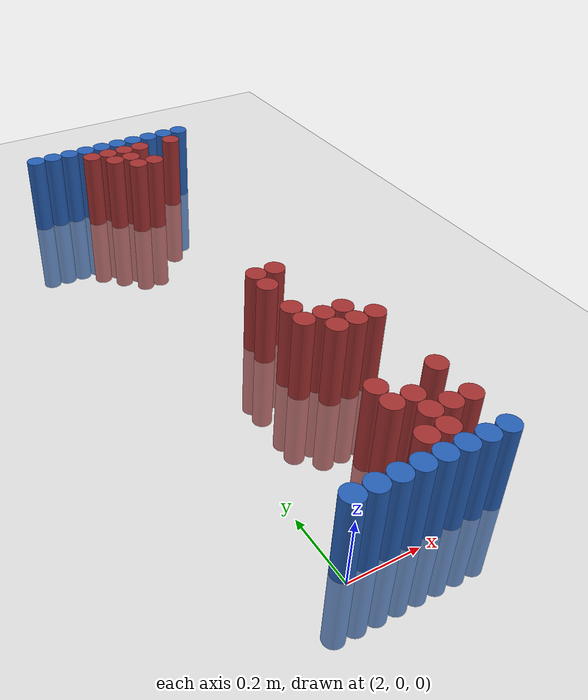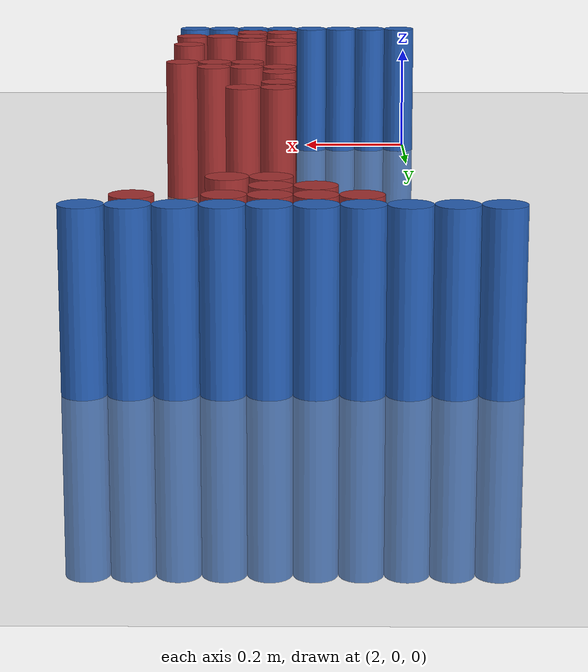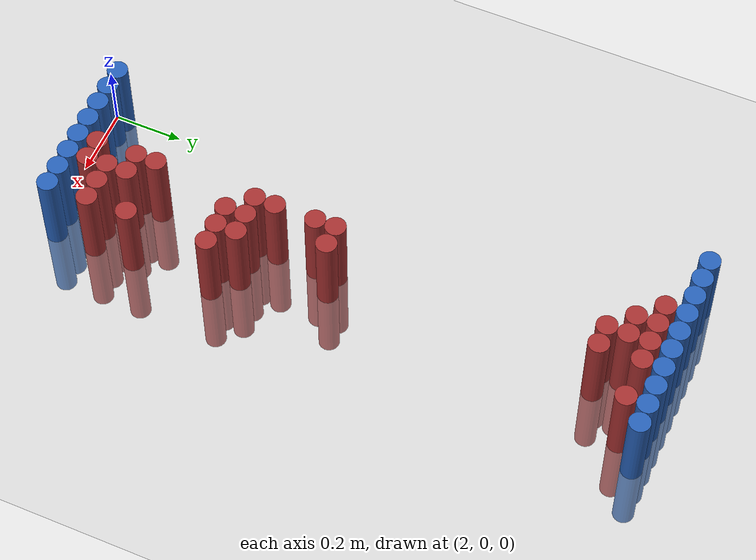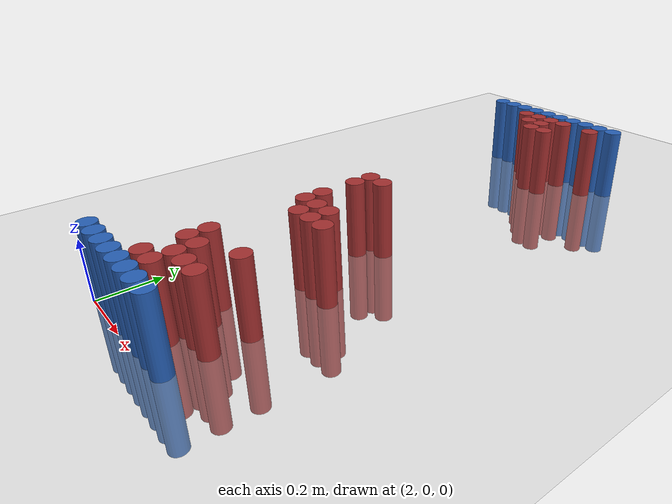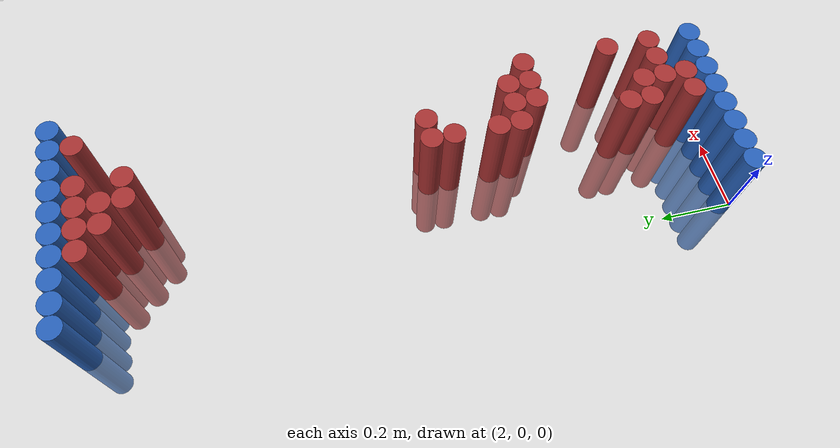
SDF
<sdf version="1.6">
 <world name="default">
  <model name="ground_plane">
   <static>1</static>
   <link name="link">
    <collision name="collision">
     <geometry><plane><normal>0 0 1</normal><size>100 100</size></plane></geometry>
     <surface><friction><ode><mu>100</mu><mu2>50</mu2></ode></friction></surface>
    </collision>
    <visual name="visual">
     <cast_shadows>0</cast_shadows>
     <geometry><plane><normal>0 0 1</normal><size>100 100</size></plane></geometry>
     <material>
      <script><uri>file://media/materials/scripts/gazebo.material</uri><name>Gazebo/Grey</name></script>
     </material>
    </visual>
   </link>
  </model>
  <model name="unit_cylinder_92">
   <static>1</static>
   <pose>1.950000 1.770000 0.000000 0.000000 0.000000 0.000000</pose>
   <link name="link">
    <inertial>
     <mass>1</mass>
     <inertia><ixx>0.145833</ixx><ixy>0</ixy><ixz>0</ixz><iyy>0.145833</iyy><iyz>0</iyz><izz>0.125</izz></inertia>
    </inertial>
    <collision name="collision">
     <geometry><cylinder><radius>0.030000</radius><length>0.5</length></cylinder></geometry>
    </collision>
    <visual name="visual">
     <geometry><cylinder><radius>0.030000</radius><length>0.5</length></cylinder></geometry>
     <material>
      <ambient>0.152000 0.379000 0.720000 1</ambient>
      <diffuse>0.152000 0.379000 0.720000 1</diffuse>
     </material>
     <material>
      <script><name>Gazebo/Grey</name><uri>file://media/materials/scripts/gazebo.material</uri></script>
     </material>
    </visual>
   </link>
  </model>
  <model name="unit_cylinder_93">
   <static>1</static>
   <pose>2.010000 0.030000 0.000000 0.000000 0.000000 0.000000</pose>
   <link name="link">
    <inertial>
     <mass>1</mass>
     <inertia><ixx>0.145833</ixx><ixy>0</ixy><ixz>0</ixz><iyy>0.145833</iyy><iyz>0</iyz><izz>0.125</izz></inertia>
    </inertial>
    <collision name="collision">
     <geometry><cylinder><radius>0.030000</radius><length>0.5</length></cylinder></geometry>
    </collision>
    <visual name="visual">
     <geometry><cylinder><radius>0.030000</radius><length>0.5</length></cylinder></geometry>
     <material>
      <ambient>0.152000 0.379000 0.720000 1</ambient>
      <diffuse>0.152000 0.379000 0.720000 1</diffuse>
     </material>
     <material>
      <script><name>Gazebo/Grey</name><uri>file://media/materials/scripts/gazebo.material</uri></script>
     </material>
    </visual>
   </link>
  </model>
  <model name="unit_cylinder_94">
   <static>1</static>
   <pose>2.010000 1.770000 0.000000 0.000000 0.000000 0.000000</pose>
   <link name="link">
    <inertial>
     <mass>1</mass>
     <inertia><ixx>0.145833</ixx><ixy>0</ixy><ixz>0</ixz><iyy>0.145833</iyy><iyz>0</iyz><izz>0.125</izz></inertia>
    </inertial>
    <collision name="collision">
     <geometry><cylinder><radius>0.030000</radius><length>0.5</length></cylinder></geometry>
    </collision>
    <visual name="visual">
     <geometry><cylinder><radius>0.030000</radius><length>0.5</length></cylinder></geometry>
     <material>
      <ambient>0.152000 0.379000 0.720000 1</ambient>
      <diffuse>0.152000 0.379000 0.720000 1</diffuse>
     </material>
     <material>
      <script><name>Gazebo/Grey</name><uri>file://media/materials/scripts/gazebo.material</uri></script>
     </material>
    </visual>
   </link>
  </model>
  <model name="unit_cylinder_95">
   <static>1</static>
   <pose>2.070000 1.770000 0.000000 0.000000 0.000000 0.000000</pose>
   <link name="link">
    <inertial>
     <mass>1</mass>
     <inertia><ixx>0.145833</ixx><ixy>0</ixy><ixz>0</ixz><iyy>0.145833</iyy><iyz>0</iyz><izz>0.125</izz></inertia>
    </inertial>
    <collision name="collision">
     <geometry><cylinder><radius>0.030000</radius><length>0.5</length></cylinder></geometry>
    </collision>
    <visual name="visual">
     <geometry><cylinder><radius>0.030000</radius><length>0.5</length></cylinder></geometry>
     <material>
      <ambient>0.152000 0.379000 0.720000 1</ambient>
      <diffuse>0.152000 0.379000 0.720000 1</diffuse>
     </material>
     <material>
      <script><name>Gazebo/Grey</name><uri>file://media/materials/scripts/gazebo.material</uri></script>
     </material>
    </visual>
   </link>
  </model>
  <model name="unit_cylinder_96">
   <static>1</static>
   <pose>2.130000 1.770000 0.000000 0.000000 0.000000 0.000000</pose>
   <link name="link">
    <inertial>
     <mass>1</mass>
     <inertia><ixx>0.145833</ixx><ixy>0</ixy><ixz>0</ixz><iyy>0.145833</iyy><iyz>0</iyz><izz>0.125</izz></inertia>
    </inertial>
    <collision name="collision">
     <geometry><cylinder><radius>0.030000</radius><length>0.5</length></cylinder></geometry>
    </collision>
    <visual name="visual">
     <geometry><cylinder><radius>0.030000</radius><length>0.5</length></cylinder></geometry>
     <material>
      <ambient>0.152000 0.379000 0.720000 1</ambient>
      <diffuse>0.152000 0.379000 0.720000 1</diffuse>
     </material>
     <material>
      <script><name>Gazebo/Grey</name><uri>file://media/materials/scripts/gazebo.material</uri></script>
     </material>
    </visual>
   </link>
  </model>
  <model name="unit_cylinder_97">
   <static>1</static>
   <pose>2.190000 1.770000 0.000000 0.000000 0.000000 0.000000</pose>
   <link name="link">
    <inertial>
     <mass>1</mass>
     <inertia><ixx>0.145833</ixx><ixy>0</ixy><ixz>0</ixz><iyy>0.145833</iyy><iyz>0</iyz><izz>0.125</izz></inertia>
    </inertial>
    <collision name="collision">
     <geometry><cylinder><radius>0.030000</radius><length>0.5</length></cylinder></geometry>
    </collision>
    <visual name="visual">
     <geometry><cylinder><radius>0.030000</radius><length>0.5</length></cylinder></geometry>
     <material>
      <ambient>0.152000 0.379000 0.720000 1</ambient>
      <diffuse>0.152000 0.379000 0.720000 1</diffuse>
     </material>
     <material>
      <script><name>Gazebo/Grey</name><uri>file://media/materials/scripts/gazebo.material</uri></script>
     </material>
    </visual>
   </link>
  </model>
  <model name="unit_cylinder_98">
   <static>1</static>
   <pose>2.250000 1.770000 0.000000 0.000000 0.000000 0.000000</pose>
   <link name="link">
    <inertial>
     <mass>1</mass>
     <inertia><ixx>0.145833</ixx><ixy>0</ixy><ixz>0</ixz><iyy>0.145833</iyy><iyz>0</iyz><izz>0.125</izz></inertia>
    </inertial>
    <collision name="collision">
     <geometry><cylinder><radius>0.030000</radius><length>0.5</length></cylinder></geometry>
    </collision>
    <visual name="visual">
     <geometry><cylinder><radius>0.030000</radius><length>0.5</length></cylinder></geometry>
     <material>
      <ambient>0.152000 0.379000 0.720000 1</ambient>
      <diffuse>0.152000 0.379000 0.720000 1</diffuse>
     </material>
     <material>
      <script><name>Gazebo/Grey</name><uri>file://media/materials/scripts/gazebo.material</uri></script>
     </material>
    </visual>
   </link>
  </model>
  <model name="unit_cylinder_99">
   <static>1</static>
   <pose>2.310000 1.770000 0.000000 0.000000 0.000000 0.000000</pose>
   <link name="link">
    <inertial>
     <mass>1</mass>
     <inertia><ixx>0.145833</ixx><ixy>0</ixy><ixz>0</ixz><iyy>0.145833</iyy><iyz>0</iyz><izz>0.125</izz></inertia>
    </inertial>
    <collision name="collision">
     <geometry><cylinder><radius>0.030000</radius><length>0.5</length></cylinder></geometry>
    </collision>
    <visual name="visual">
     <geometry><cylinder><radius>0.030000</radius><length>0.5</length></cylinder></geometry>
     <material>
      <ambient>0.152000 0.379000 0.720000 1</ambient>
      <diffuse>0.152000 0.379000 0.720000 1</diffuse>
     </material>
     <material>
      <script><name>Gazebo/Grey</name><uri>file://media/materials/scripts/gazebo.material</uri></script>
     </material>
    </visual>
   </link>
  </model>
  <model name="unit_cylinder_100">
   <static>1</static>
   <pose>2.370000 1.770000 0.000000 0.000000 0.000000 0.000000</pose>
   <link name="link">
    <inertial>
     <mass>1</mass>
     <inertia><ixx>0.145833</ixx><ixy>0</ixy><ixz>0</ixz><iyy>0.145833</iyy><iyz>0</iyz><izz>0.125</izz></inertia>
    </inertial>
    <collision name="collision">
     <geometry><cylinder><radius>0.030000</radius><length>0.5</length></cylinder></geometry>
    </collision>
    <visual name="visual">
     <geometry><cylinder><radius>0.030000</radius><length>0.5</length></cylinder></geometry>
     <material>
      <ambient>0.152000 0.379000 0.720000 1</ambient>
      <diffuse>0.152000 0.379000 0.720000 1</diffuse>
     </material>
     <material>
      <script><name>Gazebo/Grey</name><uri>file://media/materials/scripts/gazebo.material</uri></script>
     </material>
    </visual>
   </link>
  </model>
  <model name="unit_cylinder_101">
   <static>1</static>
   <pose>2.430000 1.770000 0.000000 0.000000 0.000000 0.000000</pose>
   <link name="link">
    <inertial>
     <mass>1</mass>
     <inertia><ixx>0.145833</ixx><ixy>0</ixy><ixz>0</ixz><iyy>0.145833</iyy><iyz>0</iyz><izz>0.125</izz></inertia>
    </inertial>
    <collision name="collision">
     <geometry><cylinder><radius>0.030000</radius><length>0.5</length></cylinder></geometry>
    </collision>
    <visual name="visual">
     <geometry><cylinder><radius>0.030000</radius><length>0.5</length></cylinder></geometry>
     <material>
      <ambient>0.152000 0.379000 0.720000 1</ambient>
      <diffuse>0.152000 0.379000 0.720000 1</diffuse>
     </material>
     <material>
      <script><name>Gazebo/Grey</name><uri>file://media/materials/scripts/gazebo.material</uri></script>
     </material>
    </visual>
   </link>
  </model>
  <model name="unit_cylinder_102">
   <static>1</static>
   <pose>2.490000 1.770000 0.000000 0.000000 0.000000 0.000000</pose>
   <link name="link">
    <inertial>
     <mass>1</mass>
     <inertia><ixx>0.145833</ixx><ixy>0</ixy><ixz>0</ixz><iyy>0.145833</iyy><iyz>0</iyz><izz>0.125</izz></inertia>
    </inertial>
    <collision name="collision">
     <geometry><cylinder><radius>0.030000</radius><length>0.5</length></cylinder></geometry>
    </collision>
    <visual name="visual">
     <geometry><cylinder><radius>0.030000</radius><length>0.5</length></cylinder></geometry>
     <material>
      <ambient>0.152000 0.379000 0.720000 1</ambient>
      <diffuse>0.152000 0.379000 0.720000 1</diffuse>
     </material>
     <material>
      <script><name>Gazebo/Grey</name><uri>file://media/materials/scripts/gazebo.material</uri></script>
     </material>
    </visual>
   </link>
  </model>
  <model name="unit_cylinder_125">
   <static>1</static>
   <pose>2.130000 1.710000 0.000000 0.000000 0.000000 0.000000</pose>
   <link name="link">
    <inertial>
     <mass>1</mass>
     <inertia><ixx>0.145833</ixx><ixy>0</ixy><ixz>0</ixz><iyy>0.145833</iyy><iyz>0</iyz><izz>0.125</izz></inertia>
    </inertial>
    <collision name="collision">
     <geometry><cylinder><radius>0.030000</radius><length>0.5</length></cylinder></geometry>
    </collision>
    <visual name="visual">
     <geometry><cylinder><radius>0.030000</radius><length>0.5</length></cylinder></geometry>
     <material>
      <ambient>0.648000 0.192000 0.192000 1</ambient>
      <diffuse>0.648000 0.192000 0.192000 1</diffuse>
     </material>
     <material>
      <script><name>Gazebo/Grey</name><uri>file://media/materials/scripts/gazebo.material</uri></script>
     </material>
    </visual>
   </link>
  </model>
  <model name="unit_cylinder_126">
   <static>1</static>
   <pose>2.190000 1.710000 0.000000 0.000000 0.000000 0.000000</pose>
   <link name="link">
    <inertial>
     <mass>1</mass>
     <inertia><ixx>0.145833</ixx><ixy>0</ixy><ixz>0</ixz><iyy>0.145833</iyy><iyz>0</iyz><izz>0.125</izz></inertia>
    </inertial>
    <collision name="collision">
     <geometry><cylinder><radius>0.030000</radius><length>0.5</length></cylinder></geometry>
    </collision>
    <visual name="visual">
     <geometry><cylinder><radius>0.030000</radius><length>0.5</length></cylinder></geometry>
     <material>
      <ambient>0.648000 0.192000 0.192000 1</ambient>
      <diffuse>0.648000 0.192000 0.192000 1</diffuse>
     </material>
     <material>
      <script><name>Gazebo/Grey</name><uri>file://media/materials/scripts/gazebo.material</uri></script>
     </material>
    </visual>
   </link>
  </model>
  <model name="unit_cylinder_127">
   <static>1</static>
   <pose>2.250000 1.710000 0.000000 0.000000 0.000000 0.000000</pose>
   <link name="link">
    <inertial>
     <mass>1</mass>
     <inertia><ixx>0.145833</ixx><ixy>0</ixy><ixz>0</ixz><iyy>0.145833</iyy><iyz>0</iyz><izz>0.125</izz></inertia>
    </inertial>
    <collision name="collision">
     <geometry><cylinder><radius>0.030000</radius><length>0.5</length></cylinder></geometry>
    </collision>
    <visual name="visual">
     <geometry><cylinder><radius>0.030000</radius><length>0.5</length></cylinder></geometry>
     <material>
      <ambient>0.648000 0.192000 0.192000 1</ambient>
      <diffuse>0.648000 0.192000 0.192000 1</diffuse>
     </material>
     <material>
      <script><name>Gazebo/Grey</name><uri>file://media/materials/scripts/gazebo.material</uri></script>
     </material>
    </visual>
   </link>
  </model>
  <model name="unit_cylinder_128">
   <static>1</static>
   <pose>2.310000 1.710000 0.000000 0.000000 0.000000 0.000000</pose>
   <link name="link">
    <inertial>
     <mass>1</mass>
     <inertia><ixx>0.145833</ixx><ixy>0</ixy><ixz>0</ixz><iyy>0.145833</iyy><iyz>0</iyz><izz>0.125</izz></inertia>
    </inertial>
    <collision name="collision">
     <geometry><cylinder><radius>0.030000</radius><length>0.5</length></cylinder></geometry>
    </collision>
    <visual name="visual">
     <geometry><cylinder><radius>0.030000</radius><length>0.5</length></cylinder></geometry>
     <material>
      <ambient>0.648000 0.192000 0.192000 1</ambient>
      <diffuse>0.648000 0.192000 0.192000 1</diffuse>
     </material>
     <material>
      <script><name>Gazebo/Grey</name><uri>file://media/materials/scripts/gazebo.material</uri></script>
     </material>
    </visual>
   </link>
  </model>
  <model name="unit_cylinder_129">
   <static>1</static>
   <pose>2.430000 1.710000 0.000000 0.000000 0.000000 0.000000</pose>
   <link name="link">
    <inertial>
     <mass>1</mass>
     <inertia><ixx>0.145833</ixx><ixy>0</ixy><ixz>0</ixz><iyy>0.145833</iyy><iyz>0</iyz><izz>0.125</izz></inertia>
    </inertial>
    <collision name="collision">
     <geometry><cylinder><radius>0.030000</radius><length>0.5</length></cylinder></geometry>
    </collision>
    <visual name="visual">
     <geometry><cylinder><radius>0.030000</radius><length>0.5</length></cylinder></geometry>
     <material>
      <ambient>0.648000 0.192000 0.192000 1</ambient>
      <diffuse>0.648000 0.192000 0.192000 1</diffuse>
     </material>
     <material>
      <script><name>Gazebo/Grey</name><uri>file://media/materials/scripts/gazebo.material</uri></script>
     </material>
    </visual>
   </link>
  </model>
  <model name="unit_cylinder_141">
   <static>1</static>
   <pose>2.190000 1.650000 0.000000 0.000000 0.000000 0.000000</pose>
   <link name="link">
    <inertial>
     <mass>1</mass>
     <inertia><ixx>0.145833</ixx><ixy>0</ixy><ixz>0</ixz><iyy>0.145833</iyy><iyz>0</iyz><izz>0.125</izz></inertia>
    </inertial>
    <collision name="collision">
     <geometry><cylinder><radius>0.030000</radius><length>0.5</length></cylinder></geometry>
    </collision>
    <visual name="visual">
     <geometry><cylinder><radius>0.030000</radius><length>0.5</length></cylinder></geometry>
     <material>
      <ambient>0.648000 0.192000 0.192000 1</ambient>
      <diffuse>0.648000 0.192000 0.192000 1</diffuse>
     </material>
     <material>
      <script><name>Gazebo/Grey</name><uri>file://media/materials/scripts/gazebo.material</uri></script>
     </material>
    </visual>
   </link>
  </model>
  <model name="unit_cylinder_142">
   <static>1</static>
   <pose>2.250000 1.650000 0.000000 0.000000 0.000000 0.000000</pose>
   <link name="link">
    <inertial>
     <mass>1</mass>
     <inertia><ixx>0.145833</ixx><ixy>0</ixy><ixz>0</ixz><iyy>0.145833</iyy><iyz>0</iyz><izz>0.125</izz></inertia>
    </inertial>
    <collision name="collision">
     <geometry><cylinder><radius>0.030000</radius><length>0.5</length></cylinder></geometry>
    </collision>
    <visual name="visual">
     <geometry><cylinder><radius>0.030000</radius><length>0.5</length></cylinder></geometry>
     <material>
      <ambient>0.648000 0.192000 0.192000 1</ambient>
      <diffuse>0.648000 0.192000 0.192000 1</diffuse>
     </material>
     <material>
      <script><name>Gazebo/Grey</name><uri>file://media/materials/scripts/gazebo.material</uri></script>
     </material>
    </visual>
   </link>
  </model>
  <model name="unit_cylinder_145">
   <static>1</static>
   <pose>2.250000 1.590000 0.000000 0.000000 0.000000 0.000000</pose>
   <link name="link">
    <inertial>
     <mass>1</mass>
     <inertia><ixx>0.145833</ixx><ixy>0</ixy><ixz>0</ixz><iyy>0.145833</iyy><iyz>0</iyz><izz>0.125</izz></inertia>
    </inertial>
    <collision name="collision">
     <geometry><cylinder><radius>0.030000</radius><length>0.5</length></cylinder></geometry>
    </collision>
    <visual name="visual">
     <geometry><cylinder><radius>0.030000</radius><length>0.5</length></cylinder></geometry>
     <material>
      <ambient>0.648000 0.192000 0.192000 1</ambient>
      <diffuse>0.648000 0.192000 0.192000 1</diffuse>
     </material>
     <material>
      <script><name>Gazebo/Grey</name><uri>file://media/materials/scripts/gazebo.material</uri></script>
     </material>
    </visual>
   </link>
  </model>
  <model name="unit_cylinder_146">
   <static>1</static>
   <pose>2.310000 1.590000 0.000000 0.000000 0.000000 0.000000</pose>
   <link name="link">
    <inertial>
     <mass>1</mass>
     <inertia><ixx>0.145833</ixx><ixy>0</ixy><ixz>0</ixz><iyy>0.145833</iyy><iyz>0</iyz><izz>0.125</izz></inertia>
    </inertial>
    <collision name="collision">
     <geometry><cylinder><radius>0.030000</radius><length>0.5</length></cylinder></geometry>
    </collision>
    <visual name="visual">
     <geometry><cylinder><radius>0.030000</radius><length>0.5</length></cylinder></geometry>
     <material>
      <ambient>0.648000 0.192000 0.192000 1</ambient>
      <diffuse>0.648000 0.192000 0.192000 1</diffuse>
     </material>
     <material>
      <script><name>Gazebo/Grey</name><uri>file://media/materials/scripts/gazebo.material</uri></script>
     </material>
    </visual>
   </link>
  </model>
  <model name="unit_cylinder_171">
   <static>1</static>
   <pose>2.250000 0.810000 0.000000 0.000000 0.000000 0.000000</pose>
   <link name="link">
    <inertial>
     <mass>1</mass>
     <inertia><ixx>0.145833</ixx><ixy>0</ixy><ixz>0</ixz><iyy>0.145833</iyy><iyz>0</iyz><izz>0.125</izz></inertia>
    </inertial>
    <collision name="collision">
     <geometry><cylinder><radius>0.030000</radius><length>0.5</length></cylinder></geometry>
    </collision>
    <visual name="visual">
     <geometry><cylinder><radius>0.030000</radius><length>0.5</length></cylinder></geometry>
     <material>
      <ambient>0.648000 0.192000 0.192000 1</ambient>
      <diffuse>0.648000 0.192000 0.192000 1</diffuse>
     </material>
     <material>
      <script><name>Gazebo/Grey</name><uri>file://media/materials/scripts/gazebo.material</uri></script>
     </material>
    </visual>
   </link>
  </model>
  <model name="unit_cylinder_172">
   <static>1</static>
   <pose>2.310000 0.810000 0.000000 0.000000 0.000000 0.000000</pose>
   <link name="link">
    <inertial>
     <mass>1</mass>
     <inertia><ixx>0.145833</ixx><ixy>0</ixy><ixz>0</ixz><iyy>0.145833</iyy><iyz>0</iyz><izz>0.125</izz></inertia>
    </inertial>
    <collision name="collision">
     <geometry><cylinder><radius>0.030000</radius><length>0.5</length></cylinder></geometry>
    </collision>
    <visual name="visual">
     <geometry><cylinder><radius>0.030000</radius><length>0.5</length></cylinder></geometry>
     <material>
      <ambient>0.648000 0.192000 0.192000 1</ambient>
      <diffuse>0.648000 0.192000 0.192000 1</diffuse>
     </material>
     <material>
      <script><name>Gazebo/Grey</name><uri>file://media/materials/scripts/gazebo.material</uri></script>
     </material>
    </visual>
   </link>
  </model>
  <model name="unit_cylinder_175">
   <static>1</static>
   <pose>2.250000 0.750000 0.000000 0.000000 0.000000 0.000000</pose>
   <link name="link">
    <inertial>
     <mass>1</mass>
     <inertia><ixx>0.145833</ixx><ixy>0</ixy><ixz>0</ixz><iyy>0.145833</iyy><iyz>0</iyz><izz>0.125</izz></inertia>
    </inertial>
    <collision name="collision">
     <geometry><cylinder><radius>0.030000</radius><length>0.5</length></cylinder></geometry>
    </collision>
    <visual name="visual">
     <geometry><cylinder><radius>0.030000</radius><length>0.5</length></cylinder></geometry>
     <material>
      <ambient>0.648000 0.192000 0.192000 1</ambient>
      <diffuse>0.648000 0.192000 0.192000 1</diffuse>
     </material>
     <material>
      <script><name>Gazebo/Grey</name><uri>file://media/materials/scripts/gazebo.material</uri></script>
     </material>
    </visual>
   </link>
  </model>
  <model name="unit_cylinder_182">
   <static>1</static>
   <pose>2.250000 0.630000 0.000000 0.000000 0.000000 0.000000</pose>
   <link name="link">
    <inertial>
     <mass>1</mass>
     <inertia><ixx>0.145833</ixx><ixy>0</ixy><ixz>0</ixz><iyy>0.145833</iyy><iyz>0</iyz><izz>0.125</izz></inertia>
    </inertial>
    <collision name="collision">
     <geometry><cylinder><radius>0.030000</radius><length>0.5</length></cylinder></geometry>
    </collision>
    <visual name="visual">
     <geometry><cylinder><radius>0.030000</radius><length>0.5</length></cylinder></geometry>
     <material>
      <ambient>0.648000 0.192000 0.192000 1</ambient>
      <diffuse>0.648000 0.192000 0.192000 1</diffuse>
     </material>
     <material>
      <script><name>Gazebo/Grey</name><uri>file://media/materials/scripts/gazebo.material</uri></script>
     </material>
    </visual>
   </link>
  </model>
  <model name="unit_cylinder_184">
   <static>1</static>
   <pose>2.250000 0.570000 0.000000 0.000000 0.000000 0.000000</pose>
   <link name="link">
    <inertial>
     <mass>1</mass>
     <inertia><ixx>0.145833</ixx><ixy>0</ixy><ixz>0</ixz><iyy>0.145833</iyy><iyz>0</iyz><izz>0.125</izz></inertia>
    </inertial>
    <collision name="collision">
     <geometry><cylinder><radius>0.030000</radius><length>0.5</length></cylinder></geometry>
    </collision>
    <visual name="visual">
     <geometry><cylinder><radius>0.030000</radius><length>0.5</length></cylinder></geometry>
     <material>
      <ambient>0.648000 0.192000 0.192000 1</ambient>
      <diffuse>0.648000 0.192000 0.192000 1</diffuse>
     </material>
     <material>
      <script><name>Gazebo/Grey</name><uri>file://media/materials/scripts/gazebo.material</uri></script>
     </material>
    </visual>
   </link>
  </model>
  <model name="unit_cylinder_185">
   <static>1</static>
   <pose>2.310000 0.570000 0.000000 0.000000 0.000000 0.000000</pose>
   <link name="link">
    <inertial>
     <mass>1</mass>
     <inertia><ixx>0.145833</ixx><ixy>0</ixy><ixz>0</ixz><iyy>0.145833</iyy><iyz>0</iyz><izz>0.125</izz></inertia>
    </inertial>
    <collision name="collision">
     <geometry><cylinder><radius>0.030000</radius><length>0.5</length></cylinder></geometry>
    </collision>
    <visual name="visual">
     <geometry><cylinder><radius>0.030000</radius><length>0.5</length></cylinder></geometry>
     <material>
      <ambient>0.648000 0.192000 0.192000 1</ambient>
      <diffuse>0.648000 0.192000 0.192000 1</diffuse>
     </material>
     <material>
      <script><name>Gazebo/Grey</name><uri>file://media/materials/scripts/gazebo.material</uri></script>
     </material>
    </visual>
   </link>
  </model>
  <model name="unit_cylinder_186">
   <static>1</static>
   <pose>2.370000 0.570000 0.000000 0.000000 0.000000 0.000000</pose>
   <link name="link">
    <inertial>
     <mass>1</mass>
     <inertia><ixx>0.145833</ixx><ixy>0</ixy><ixz>0</ixz><iyy>0.145833</iyy><iyz>0</iyz><izz>0.125</izz></inertia>
    </inertial>
    <collision name="collision">
     <geometry><cylinder><radius>0.030000</radius><length>0.5</length></cylinder></geometry>
    </collision>
    <visual name="visual">
     <geometry><cylinder><radius>0.030000</radius><length>0.5</length></cylinder></geometry>
     <material>
      <ambient>0.648000 0.192000 0.192000 1</ambient>
      <diffuse>0.648000 0.192000 0.192000 1</diffuse>
     </material>
     <material>
      <script><name>Gazebo/Grey</name><uri>file://media/materials/scripts/gazebo.material</uri></script>
     </material>
    </visual>
   </link>
  </model>
  <model name="unit_cylinder_188">
   <static>1</static>
   <pose>2.310000 0.510000 0.000000 0.000000 0.000000 0.000000</pose>
   <link name="link">
    <inertial>
     <mass>1</mass>
     <inertia><ixx>0.145833</ixx><ixy>0</ixy><ixz>0</ixz><iyy>0.145833</iyy><iyz>0</iyz><izz>0.125</izz></inertia>
    </inertial>
    <collision name="collision">
     <geometry><cylinder><radius>0.030000</radius><length>0.5</length></cylinder></geometry>
    </collision>
    <visual name="visual">
     <geometry><cylinder><radius>0.030000</radius><length>0.5</length></cylinder></geometry>
     <material>
      <ambient>0.648000 0.192000 0.192000 1</ambient>
      <diffuse>0.648000 0.192000 0.192000 1</diffuse>
     </material>
     <material>
      <script><name>Gazebo/Grey</name><uri>file://media/materials/scripts/gazebo.material</uri></script>
     </material>
    </visual>
   </link>
  </model>
  <model name="unit_cylinder_189">
   <static>1</static>
   <pose>2.370000 0.510000 0.000000 0.000000 0.000000 0.000000</pose>
   <link name="link">
    <inertial>
     <mass>1</mass>
     <inertia><ixx>0.145833</ixx><ixy>0</ixy><ixz>0</ixz><iyy>0.145833</iyy><iyz>0</iyz><izz>0.125</izz></inertia>
    </inertial>
    <collision name="collision">
     <geometry><cylinder><radius>0.030000</radius><length>0.5</length></cylinder></geometry>
    </collision>
    <visual name="visual">
     <geometry><cylinder><radius>0.030000</radius><length>0.5</length></cylinder></geometry>
     <material>
      <ambient>0.648000 0.192000 0.192000 1</ambient>
      <diffuse>0.648000 0.192000 0.192000 1</diffuse>
     </material>
     <material>
      <script><name>Gazebo/Grey</name><uri>file://media/materials/scripts/gazebo.material</uri></script>
     </material>
    </visual>
   </link>
  </model>
  <model name="unit_cylinder_190">
   <static>1</static>
   <pose>2.430000 0.510000 0.000000 0.000000 0.000000 0.000000</pose>
   <link name="link">
    <inertial>
     <mass>1</mass>
     <inertia><ixx>0.145833</ixx><ixy>0</ixy><ixz>0</ixz><iyy>0.145833</iyy><iyz>0</iyz><izz>0.125</izz></inertia>
    </inertial>
    <collision name="collision">
     <geometry><cylinder><radius>0.030000</radius><length>0.5</length></cylinder></geometry>
    </collision>
    <visual name="visual">
     <geometry><cylinder><radius>0.030000</radius><length>0.5</length></cylinder></geometry>
     <material>
      <ambient>0.648000 0.192000 0.192000 1</ambient>
      <diffuse>0.648000 0.192000 0.192000 1</diffuse>
     </material>
     <material>
      <script><name>Gazebo/Grey</name><uri>file://media/materials/scripts/gazebo.material</uri></script>
     </material>
    </visual>
   </link>
  </model>
  <model name="unit_cylinder_200">
   <static>1</static>
   <pose>2.250000 0.270000 0.000000 0.000000 0.000000 0.000000</pose>
   <link name="link">
    <inertial>
     <mass>1</mass>
     <inertia><ixx>0.145833</ixx><ixy>0</ixy><ixz>0</ixz><iyy>0.145833</iyy><iyz>0</iyz><izz>0.125</izz></inertia>
    </inertial>
    <collision name="collision">
     <geometry><cylinder><radius>0.030000</radius><length>0.5</length></cylinder></geometry>
    </collision>
    <visual name="visual">
     <geometry><cylinder><radius>0.030000</radius><length>0.5</length></cylinder></geometry>
     <material>
      <ambient>0.648000 0.192000 0.192000 1</ambient>
      <diffuse>0.648000 0.192000 0.192000 1</diffuse>
     </material>
     <material>
      <script><name>Gazebo/Grey</name><uri>file://media/materials/scripts/gazebo.material</uri></script>
     </material>
    </visual>
   </link>
  </model>
  <model name="unit_cylinder_201">
   <static>1</static>
   <pose>2.430000 0.270000 0.000000 0.000000 0.000000 0.000000</pose>
   <link name="link">
    <inertial>
     <mass>1</mass>
     <inertia><ixx>0.145833</ixx><ixy>0</ixy><ixz>0</ixz><iyy>0.145833</iyy><iyz>0</iyz><izz>0.125</izz></inertia>
    </inertial>
    <collision name="collision">
     <geometry><cylinder><radius>0.030000</radius><length>0.5</length></cylinder></geometry>
    </collision>
    <visual name="visual">
     <geometry><cylinder><radius>0.030000</radius><length>0.5</length></cylinder></geometry>
     <material>
      <ambient>0.648000 0.192000 0.192000 1</ambient>
      <diffuse>0.648000 0.192000 0.192000 1</diffuse>
     </material>
     <material>
      <script><name>Gazebo/Grey</name><uri>file://media/materials/scripts/gazebo.material</uri></script>
     </material>
    </visual>
   </link>
  </model>
  <model name="unit_cylinder_206">
   <static>1</static>
   <pose>2.250000 0.210000 0.000000 0.000000 0.000000 0.000000</pose>
   <link name="link">
    <inertial>
     <mass>1</mass>
     <inertia><ixx>0.145833</ixx><ixy>0</ixy><ixz>0</ixz><iyy>0.145833</iyy><iyz>0</iyz><izz>0.125</izz></inertia>
    </inertial>
    <collision name="collision">
     <geometry><cylinder><radius>0.030000</radius><length>0.5</length></cylinder></geometry>
    </collision>
    <visual name="visual">
     <geometry><cylinder><radius>0.030000</radius><length>0.5</length></cylinder></geometry>
     <material>
      <ambient>0.648000 0.192000 0.192000 1</ambient>
      <diffuse>0.648000 0.192000 0.192000 1</diffuse>
     </material>
     <material>
      <script><name>Gazebo/Grey</name><uri>file://media/materials/scripts/gazebo.material</uri></script>
     </material>
    </visual>
   </link>
  </model>
  <model name="unit_cylinder_207">
   <static>1</static>
   <pose>2.310000 0.210000 0.000000 0.000000 0.000000 0.000000</pose>
   <link name="link">
    <inertial>
     <mass>1</mass>
     <inertia><ixx>0.145833</ixx><ixy>0</ixy><ixz>0</ixz><iyy>0.145833</iyy><iyz>0</iyz><izz>0.125</izz></inertia>
    </inertial>
    <collision name="collision">
     <geometry><cylinder><radius>0.030000</radius><length>0.5</length></cylinder></geometry>
    </collision>
    <visual name="visual">
     <geometry><cylinder><radius>0.030000</radius><length>0.5</length></cylinder></geometry>
     <material>
      <ambient>0.648000 0.192000 0.192000 1</ambient>
      <diffuse>0.648000 0.192000 0.192000 1</diffuse>
     </material>
     <material>
      <script><name>Gazebo/Grey</name><uri>file://media/materials/scripts/gazebo.material</uri></script>
     </material>
    </visual>
   </link>
  </model>
  <model name="unit_cylinder_216">
   <static>1</static>
   <pose>2.310000 0.150000 0.000000 0.000000 0.000000 0.000000</pose>
   <link name="link">
    <inertial>
     <mass>1</mass>
     <inertia><ixx>0.145833</ixx><ixy>0</ixy><ixz>0</ixz><iyy>0.145833</iyy><iyz>0</iyz><izz>0.125</izz></inertia>
    </inertial>
    <collision name="collision">
     <geometry><cylinder><radius>0.030000</radius><length>0.5</length></cylinder></geometry>
    </collision>
    <visual name="visual">
     <geometry><cylinder><radius>0.030000</radius><length>0.5</length></cylinder></geometry>
     <material>
      <ambient>0.648000 0.192000 0.192000 1</ambient>
      <diffuse>0.648000 0.192000 0.192000 1</diffuse>
     </material>
     <material>
      <script><name>Gazebo/Grey</name><uri>file://media/materials/scripts/gazebo.material</uri></script>
     </material>
    </visual>
   </link>
  </model>
  <model name="unit_cylinder_217">
   <static>1</static>
   <pose>2.370000 0.150000 0.000000 0.000000 0.000000 0.000000</pose>
   <link name="link">
    <inertial>
     <mass>1</mass>
     <inertia><ixx>0.145833</ixx><ixy>0</ixy><ixz>0</ixz><iyy>0.145833</iyy><iyz>0</iyz><izz>0.125</izz></inertia>
    </inertial>
    <collision name="collision">
     <geometry><cylinder><radius>0.030000</radius><length>0.5</length></cylinder></geometry>
    </collision>
    <visual name="visual">
     <geometry><cylinder><radius>0.030000</radius><length>0.5</length></cylinder></geometry>
     <material>
      <ambient>0.648000 0.192000 0.192000 1</ambient>
      <diffuse>0.648000 0.192000 0.192000 1</diffuse>
     </material>
     <material>
      <script><name>Gazebo/Grey</name><uri>file://media/materials/scripts/gazebo.material</uri></script>
     </material>
    </visual>
   </link>
  </model>
  <model name="unit_cylinder_218">
   <static>1</static>
   <pose>2.430000 0.150000 0.000000 0.000000 0.000000 0.000000</pose>
   <link name="link">
    <inertial>
     <mass>1</mass>
     <inertia><ixx>0.145833</ixx><ixy>0</ixy><ixz>0</ixz><iyy>0.145833</iyy><iyz>0</iyz><izz>0.125</izz></inertia>
    </inertial>
    <collision name="collision">
     <geometry><cylinder><radius>0.030000</radius><length>0.5</length></cylinder></geometry>
    </collision>
    <visual name="visual">
     <geometry><cylinder><radius>0.030000</radius><length>0.5</length></cylinder></geometry>
     <material>
      <ambient>0.648000 0.192000 0.192000 1</ambient>
      <diffuse>0.648000 0.192000 0.192000 1</diffuse>
     </material>
     <material>
      <script><name>Gazebo/Grey</name><uri>file://media/materials/scripts/gazebo.material</uri></script>
     </material>
    </visual>
   </link>
  </model>
  <model name="unit_cylinder_229">
   <static>1</static>
   <pose>2.250000 0.090000 0.000000 0.000000 0.000000 0.000000</pose>
   <link name="link">
    <inertial>
     <mass>1</mass>
     <inertia><ixx>0.145833</ixx><ixy>0</ixy><ixz>0</ixz><iyy>0.145833</iyy><iyz>0</iyz><izz>0.125</izz></inertia>
    </inertial>
    <collision name="collision">
     <geometry><cylinder><radius>0.030000</radius><length>0.5</length></cylinder></geometry>
    </collision>
    <visual name="visual">
     <geometry><cylinder><radius>0.030000</radius><length>0.5</length></cylinder></geometry>
     <material>
      <ambient>0.648000 0.192000 0.192000 1</ambient>
      <diffuse>0.648000 0.192000 0.192000 1</diffuse>
     </material>
     <material>
      <script><name>Gazebo/Grey</name><uri>file://media/materials/scripts/gazebo.material</uri></script>
     </material>
    </visual>
   </link>
  </model>
  <model name="unit_cylinder_230">
   <static>1</static>
   <pose>2.310000 0.090000 0.000000 0.000000 0.000000 0.000000</pose>
   <link name="link">
    <inertial>
     <mass>1</mass>
     <inertia><ixx>0.145833</ixx><ixy>0</ixy><ixz>0</ixz><iyy>0.145833</iyy><iyz>0</iyz><izz>0.125</izz></inertia>
    </inertial>
    <collision name="collision">
     <geometry><cylinder><radius>0.030000</radius><length>0.5</length></cylinder></geometry>
    </collision>
    <visual name="visual">
     <geometry><cylinder><radius>0.030000</radius><length>0.5</length></cylinder></geometry>
     <material>
      <ambient>0.648000 0.192000 0.192000 1</ambient>
      <diffuse>0.648000 0.192000 0.192000 1</diffuse>
     </material>
     <material>
      <script><name>Gazebo/Grey</name><uri>file://media/materials/scripts/gazebo.material</uri></script>
     </material>
    </visual>
   </link>
  </model>
  <model name="unit_cylinder_245">
   <static>1</static>
   <pose>2.070000 0.030000 0.000000 0.000000 0.000000 0.000000</pose>
   <link name="link">
    <inertial>
     <mass>1</mass>
     <inertia><ixx>0.145833</ixx><ixy>0</ixy><ixz>0</ixz><iyy>0.145833</iyy><iyz>0</iyz><izz>0.125</izz></inertia>
    </inertial>
    <collision name="collision">
     <geometry><cylinder><radius>0.030000</radius><length>0.5</length></cylinder></geometry>
    </collision>
    <visual name="visual">
     <geometry><cylinder><radius>0.030000</radius><length>0.5</length></cylinder></geometry>
     <material>
      <ambient>0.152000 0.379000 0.720000 1</ambient>
      <diffuse>0.152000 0.379000 0.720000 1</diffuse>
     </material>
     <material>
      <script><name>Gazebo/Grey</name><uri>file://media/materials/scripts/gazebo.material</uri></script>
     </material>
    </visual>
   </link>
  </model>
  <model name="unit_cylinder_246">
   <static>1</static>
   <pose>2.130000 0.030000 0.000000 0.000000 0.000000 0.000000</pose>
   <link name="link">
    <inertial>
     <mass>1</mass>
     <inertia><ixx>0.145833</ixx><ixy>0</ixy><ixz>0</ixz><iyy>0.145833</iyy><iyz>0</iyz><izz>0.125</izz></inertia>
    </inertial>
    <collision name="collision">
     <geometry><cylinder><radius>0.030000</radius><length>0.5</length></cylinder></geometry>
    </collision>
    <visual name="visual">
     <geometry><cylinder><radius>0.030000</radius><length>0.5</length></cylinder></geometry>
     <material>
      <ambient>0.152000 0.379000 0.720000 1</ambient>
      <diffuse>0.152000 0.379000 0.720000 1</diffuse>
     </material>
     <material>
      <script><name>Gazebo/Grey</name><uri>file://media/materials/scripts/gazebo.material</uri></script>
     </material>
    </visual>
   </link>
  </model>
  <model name="unit_cylinder_247">
   <static>1</static>
   <pose>2.190000 0.030000 0.000000 0.000000 0.000000 0.000000</pose>
   <link name="link">
    <inertial>
     <mass>1</mass>
     <inertia><ixx>0.145833</ixx><ixy>0</ixy><ixz>0</ixz><iyy>0.145833</iyy><iyz>0</iyz><izz>0.125</izz></inertia>
    </inertial>
    <collision name="collision">
     <geometry><cylinder><radius>0.030000</radius><length>0.5</length></cylinder></geometry>
    </collision>
    <visual name="visual">
     <geometry><cylinder><radius>0.030000</radius><length>0.5</length></cylinder></geometry>
     <material>
      <ambient>0.152000 0.379000 0.720000 1</ambient>
      <diffuse>0.152000 0.379000 0.720000 1</diffuse>
     </material>
     <material>
      <script><name>Gazebo/Grey</name><uri>file://media/materials/scripts/gazebo.material</uri></script>
     </material>
    </visual>
   </link>
  </model>
  <model name="unit_cylinder_248">
   <static>1</static>
   <pose>2.250000 0.030000 0.000000 0.000000 0.000000 0.000000</pose>
   <link name="link">
    <inertial>
     <mass>1</mass>
     <inertia><ixx>0.145833</ixx><ixy>0</ixy><ixz>0</ixz><iyy>0.145833</iyy><iyz>0</iyz><izz>0.125</izz></inertia>
    </inertial>
    <collision name="collision">
     <geometry><cylinder><radius>0.030000</radius><length>0.5</length></cylinder></geometry>
    </collision>
    <visual name="visual">
     <geometry><cylinder><radius>0.030000</radius><length>0.5</length></cylinder></geometry>
     <material>
      <ambient>0.152000 0.379000 0.720000 1</ambient>
      <diffuse>0.152000 0.379000 0.720000 1</diffuse>
     </material>
     <material>
      <script><name>Gazebo/Grey</name><uri>file://media/materials/scripts/gazebo.material</uri></script>
     </material>
    </visual>
   </link>
  </model>
  <model name="unit_cylinder_249">
   <static>1</static>
   <pose>2.310000 0.030000 0.000000 0.000000 0.000000 0.000000</pose>
   <link name="link">
    <inertial>
     <mass>1</mass>
     <inertia><ixx>0.145833</ixx><ixy>0</ixy><ixz>0</ixz><iyy>0.145833</iyy><iyz>0</iyz><izz>0.125</izz></inertia>
    </inertial>
    <collision name="collision">
     <geometry><cylinder><radius>0.030000</radius><length>0.5</length></cylinder></geometry>
    </collision>
    <visual name="visual">
     <geometry><cylinder><radius>0.030000</radius><length>0.5</length></cylinder></geometry>
     <material>
      <ambient>0.152000 0.379000 0.720000 1</ambient>
      <diffuse>0.152000 0.379000 0.720000 1</diffuse>
     </material>
     <material>
      <script><name>Gazebo/Grey</name><uri>file://media/materials/scripts/gazebo.material</uri></script>
     </material>
    </visual>
   </link>
  </model>
  <model name="unit_cylinder_250">
   <static>1</static>
   <pose>2.370000 0.030000 0.000000 0.000000 0.000000 0.000000</pose>
   <link name="link">
    <inertial>
     <mass>1</mass>
     <inertia><ixx>0.145833</ixx><ixy>0</ixy><ixz>0</ixz><iyy>0.145833</iyy><iyz>0</iyz><izz>0.125</izz></inertia>
    </inertial>
    <collision name="collision">
     <geometry><cylinder><radius>0.030000</radius><length>0.5</length></cylinder></geometry>
    </collision>
    <visual name="visual">
     <geometry><cylinder><radius>0.030000</radius><length>0.5</length></cylinder></geometry>
     <material>
      <ambient>0.152000 0.379000 0.720000 1</ambient>
      <diffuse>0.152000 0.379000 0.720000 1</diffuse>
     </material>
     <material>
      <script><name>Gazebo/Grey</name><uri>file://media/materials/scripts/gazebo.material</uri></script>
     </material>
    </visual>
   </link>
  </model>
  <model name="unit_cylinder_251">
   <static>1</static>
   <pose>2.430000 0.030000 0.000000 0.000000 0.000000 0.000000</pose>
   <link name="link">
    <inertial>
     <mass>1</mass>
     <inertia><ixx>0.145833</ixx><ixy>0</ixy><ixz>0</ixz><iyy>0.145833</iyy><iyz>0</iyz><izz>0.125</izz></inertia>
    </inertial>
    <collision name="collision">
     <geometry><cylinder><radius>0.030000</radius><length>0.5</length></cylinder></geometry>
    </collision>
    <visual name="visual">
     <geometry><cylinder><radius>0.030000</radius><length>0.5</length></cylinder></geometry>
     <material>
      <ambient>0.152000 0.379000 0.720000 1</ambient>
      <diffuse>0.152000 0.379000 0.720000 1</diffuse>
     </material>
     <material>
      <script><name>Gazebo/Grey</name><uri>file://media/materials/scripts/gazebo.material</uri></script>
     </material>
    </visual>
   </link>
  </model>
 </world>
</sdf>
